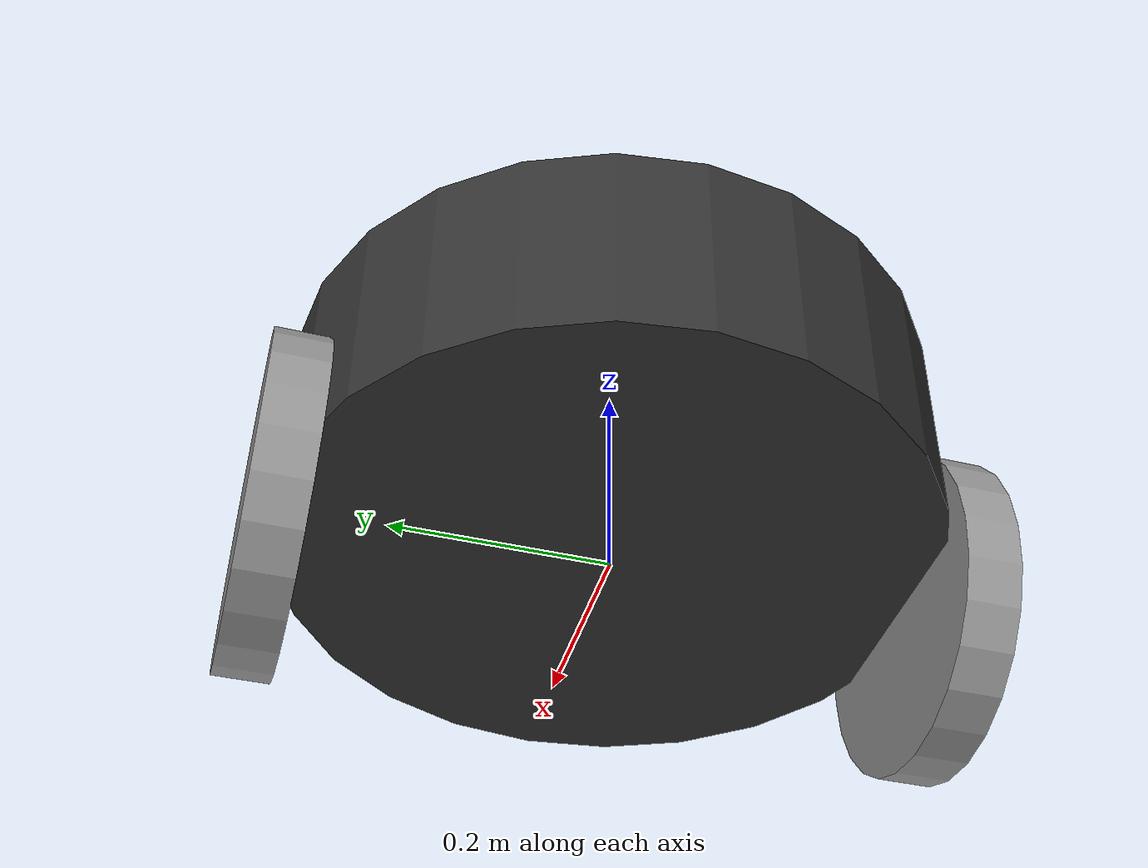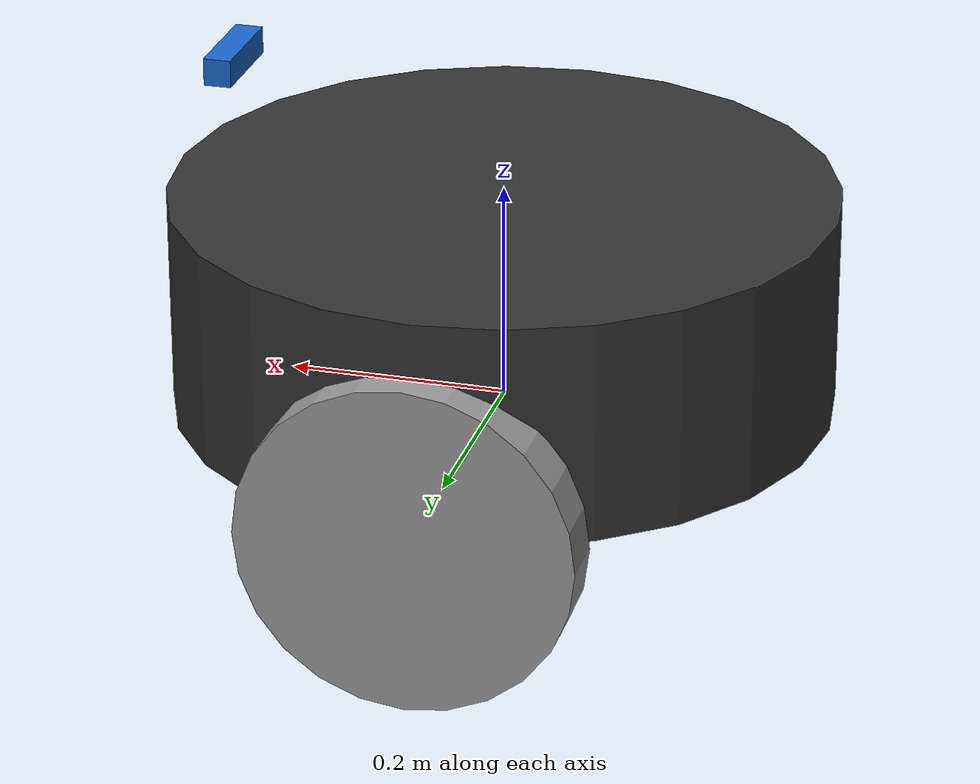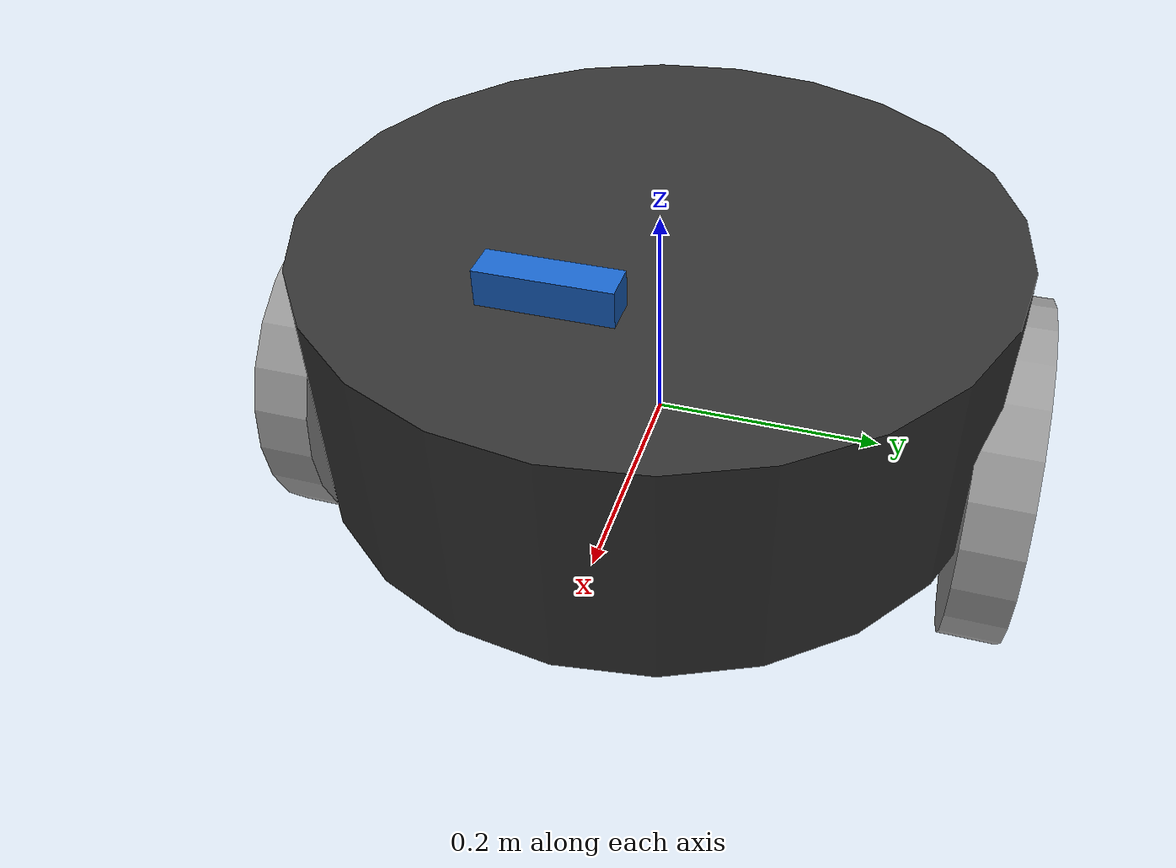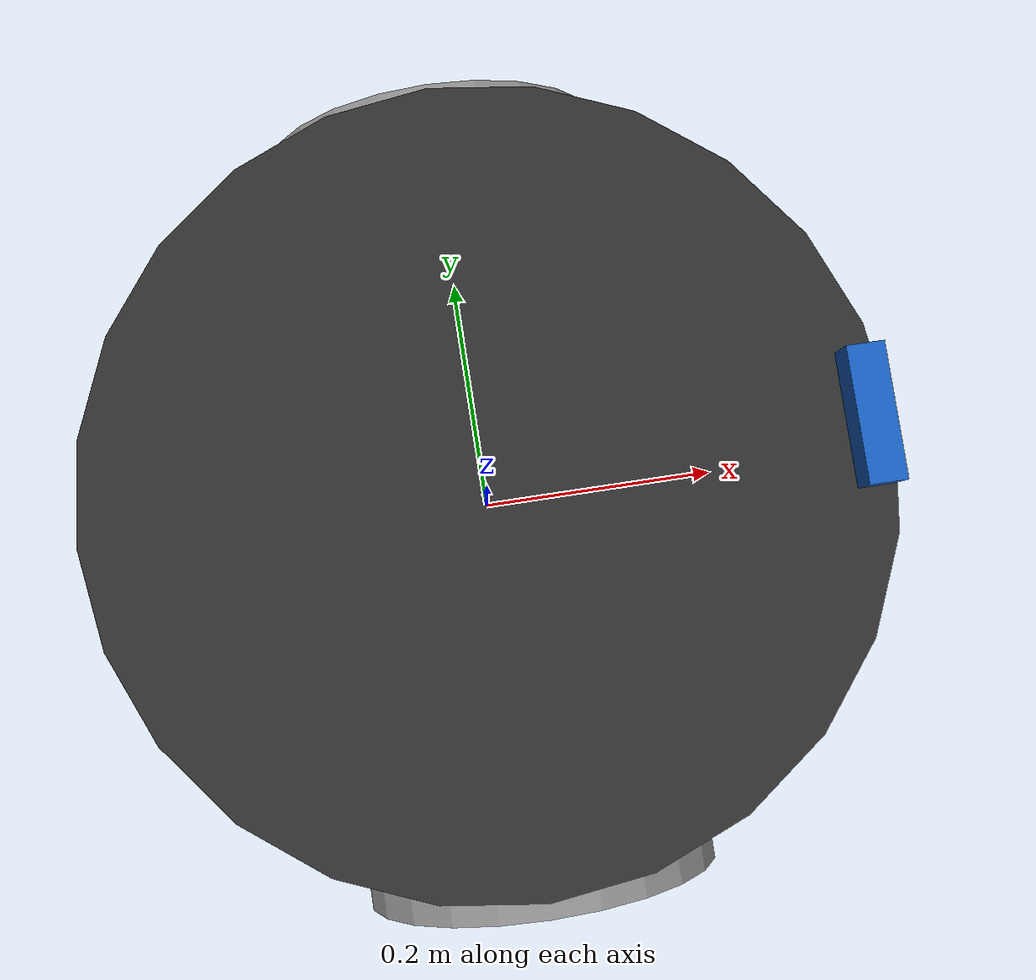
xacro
<?xml version="1.0"?>
<robot xmlns:xacro="http://www.ros.org/wiki/xacro" name="agv">

  <!-- ── Parameters ─────────────────────────────────────────────────────── -->
  <xacro:arg name="camera_x"     default="0.25"/>
  <xacro:arg name="camera_y"     default="0.0"/>
  <xacro:arg name="camera_z"     default="0.30"/>
  <xacro:arg name="camera_pitch" default="0.0"/>

  <xacro:property name="wheel_base"   value="0.60"/>
  <xacro:property name="wheel_radius" value="0.15"/>
  <xacro:property name="wheel_width"  value="0.05"/>
  <xacro:property name="base_height"  value="0.20"/>
  <xacro:property name="base_radius"  value="0.30"/>

  <!-- ── Materials ──────────────────────────────────────────────────────── -->
  <material name="dark_grey">  <color rgba="0.2 0.2 0.2 1.0"/> </material>
  <material name="light_grey"> <color rgba="0.6 0.6 0.6 1.0"/> </material>
  <material name="blue">       <color rgba="0.1 0.4 0.8 1.0"/> </material>

  <!-- ── base_link ─────────────────────────────────────────────────────── -->
  <link name="base_link">
    <visual>
      <origin xyz="0 0 ${base_height/2}" rpy="0 0 0"/>
      <geometry><cylinder radius="${base_radius}" length="${base_height}"/></geometry>
      <material name="dark_grey"/>
    </visual>
    <collision>
      <origin xyz="0 0 ${base_height/2}" rpy="0 0 0"/>
      <geometry><cylinder radius="${base_radius}" length="${base_height}"/></geometry>
    </collision>
    <inertial>
      <mass value="20.0"/>
      <inertia ixx="0.5" ixy="0" ixz="0" iyy="0.5" iyz="0" izz="0.8"/>
    </inertial>
  </link>

  <!-- ── base_footprint (ground projection) ────────────────────────────── -->
  <link name="base_footprint"/>
  <joint name="base_footprint_joint" type="fixed">
    <parent link="base_link"/>
    <child  link="base_footprint"/>
    <origin xyz="0 0 0" rpy="0 0 0"/>
  </joint>

  <!-- ── Left wheel (J1) ───────────────────────────────────────────────── -->
  <link name="left_wheel_link">
    <visual>
      <origin xyz="0 0 0" rpy="${pi/2} 0 0"/>
      <geometry><cylinder radius="${wheel_radius}" length="${wheel_width}"/></geometry>
      <material name="light_grey"/>
    </visual>
    <collision>
      <origin xyz="0 0 0" rpy="${pi/2} 0 0"/>
      <geometry><cylinder radius="${wheel_radius}" length="${wheel_width}"/></geometry>
    </collision>
    <inertial>
      <mass value="2.0"/>
      <inertia ixx="0.01" ixy="0" ixz="0" iyy="0.01" iyz="0" izz="0.02"/>
    </inertial>
  </link>
  <joint name="left_wheel_joint" type="continuous">
    <parent link="base_link"/>
    <child  link="left_wheel_link"/>
    <origin xyz="0 ${wheel_base/2} 0" rpy="0 0 0"/>
    <axis xyz="0 1 0"/>
  </joint>

  <!-- ── Right wheel (J2) ──────────────────────────────────────────────── -->
  <link name="right_wheel_link">
    <visual>
      <origin xyz="0 0 0" rpy="${pi/2} 0 0"/>
      <geometry><cylinder radius="${wheel_radius}" length="${wheel_width}"/></geometry>
      <material name="light_grey"/>
    </visual>
    <collision>
      <origin xyz="0 0 0" rpy="${pi/2} 0 0"/>
      <geometry><cylinder radius="${wheel_radius}" length="${wheel_width}"/></geometry>
    </collision>
    <inertial>
      <mass value="2.0"/>
      <inertia ixx="0.01" ixy="0" ixz="0" iyy="0.01" iyz="0" izz="0.02"/>
    </inertial>
  </link>
  <joint name="right_wheel_joint" type="continuous">
    <parent link="base_link"/>
    <child  link="right_wheel_link"/>
    <origin xyz="0 ${-wheel_base/2} 0" rpy="0 0 0"/>
    <axis xyz="0 1 0"/>
  </joint>

  <!-- ── GPS antenna link (U-blox receiver) ───────────────────────────── -->
  <link name="gps_link"/>
  <joint name="gps_joint" type="fixed">
    <parent link="base_link"/>
    <child  link="gps_link"/>
    <origin xyz="0.0 0.0 0.35" rpy="0 0 0"/>
  </joint>

  <!-- ── Camera link (Intel RealSense D435/D455) ───────────────────────── -->
  <link name="camera_link">
    <visual>
      <origin xyz="0 0 0" rpy="0 0 0"/>
      <geometry><box size="0.025 0.090 0.025"/></geometry>
      <material name="blue"/>
    </visual>
    <collision>
      <origin xyz="0 0 0" rpy="0 0 0"/>
      <geometry><box size="0.025 0.090 0.025"/></geometry>
    </collision>
    <inertial>
      <mass value="0.072"/>
      <inertia ixx="1e-4" ixy="0" ixz="0" iyy="1e-4" iyz="0" izz="1e-4"/>
    </inertial>
  </link>
  <joint name="camera_joint" type="fixed">
    <parent link="base_link"/>
    <child  link="camera_link"/>
    <origin xyz="$(arg camera_x) $(arg camera_y) $(arg camera_z)"
            rpy="0 $(arg camera_pitch) 0"/>
  </joint>

</robot>
